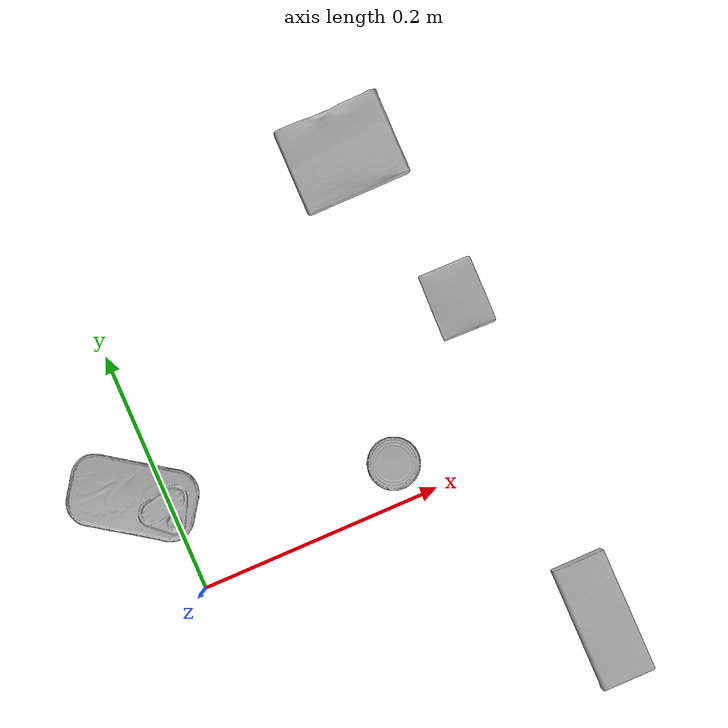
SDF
<sdf version="1.4">
  <world name="default">
    <light name="light1" type="point">
      <pose>0 0 1 0 0 0</pose>
      <diffuse>3 3 3 1</diffuse>
      <specular>3 3 3 1</specular>
    </light>
    <light name="light2" type="point">
      <pose>0 0.5 2 0 0 0</pose>
      <diffuse>1 1 1 1</diffuse>
      <specular>1 1 1 1</specular>
    </light>
    <light name="light3" type="point">
      <pose>0 0.5 2 0 0 0</pose>
      <diffuse>3 3 3 1</diffuse>
      <specular>3 3 3 1</specular>
    </light>
    <scene>
      <ambient>0.7 0.7 0.7</ambient>
    </scene>
    <model name="box1">
      <link name="link_box1">
        <collision name="default">
          <geometry>
            <mesh>
              <uri>model://pudding_box/collision_meshes/collision.obj</uri>
              <scale>0.5 0.5 0.5</scale>
            </mesh>
          </geometry>
          <surface>
            <friction>
              <ode>
                <mu>0.5</mu>
                <mu2>0.5</mu2>
              </ode>
            </friction>
          <contact>
        <ode>
            <max_vel>0</max_vel>
            <min_depth>0.0001</min_depth>
            <kp>1e8</kp>
        </ode>
    </contact></surface>
        </collision>
        <visual name="default">
          <geometry>
            <mesh>
              <uri>model://pudding_box/visual_meshes/visual.dae</uri>
              <scale>0.5 0.5 0.5</scale>
            </mesh>
          </geometry>
        </visual>
        <inertial>
          <mass>0.037190694361925125</mass>
          <pose>0.00024474109522998333 0.00040339428232982755 -0.0002594413817860186 0.005213101817299687 -0.0066037968510836995 0.02007982330137587</pose>
          <inertia>
            <ixx>1.0510541e-05</ixx>
            <iyy>7.071568e-06</iyy>
            <izz>1.552156e-05</izz>
            <ixy>0</ixy>
            <ixz>0</ixz>
            <iyz>0</iyz>
          </inertia>
        </inertial>
      </link>
      <pose>0.27432096004486084 0.1313045471906662 0.009862903505563736 0.022348513567265717 -0.0113917163356818 -0.019137994646427056</pose>
    </model>
    <model name="box2">
      <link name="link_box2">
        <collision name="default">
          <geometry>
            <mesh>
              <uri>model://gelatin_box/collision_meshes/collision.obj</uri>
              <scale>1.0 1.0 1.0</scale>
            </mesh>
          </geometry>
          <surface>
            <friction>
              <ode>
                <mu>0.5</mu>
                <mu2>0.5</mu2>
              </ode>
            </friction>
          <contact>
        <ode>
            <max_vel>0</max_vel>
            <min_depth>0.0001</min_depth>
            <kp>1e8</kp>
        </ode>
    </contact></surface>
        </collision>
        <visual name="default">
          <geometry>
            <mesh>
              <uri>model://gelatin_box/visual_meshes/visual.dae</uri>
              <scale>1.0 1.0 1.0</scale>
            </mesh>
          </geometry>
        </visual>
        <inertial>
          <mass>0.11744645982980728</mass>
          <pose>0.0004319618456065655 0.00011156871914863586 -0.0003640321083366871 -0.001050371865231848 -0.004755818223747806 0.01644056319675078</pose>
          <inertia>
            <ixx>8.290762e-05</ixx>
            <iyy>5.9220478e-05</iyy>
            <izz>0.00012620387</izz>
            <ixy>0</ixy>
            <ixz>0</ixz>
            <iyz>0</iyz>
          </inertia>
        </inertial>
      </link>
      <pose>0.23702116310596466 0.27385514974594116 0.015168311074376106 0.005597435684483446 -0.0073045247103087855 1.562668314015747</pose>
    </model>
    <model name="box3">
      <link name="link_box3">
        <collision name="default">
          <geometry>
            <mesh>
              <uri>model://wood_block/collision_meshes/collision.obj</uri>
              <scale>0.5 0.5 0.5</scale>
            </mesh>
          </geometry>
          <surface>
            <friction>
              <ode>
                <mu>0.5</mu>
                <mu2>0.5</mu2>
              </ode>
            </friction>
          <contact>
        <ode>
            <max_vel>0</max_vel>
            <min_depth>0.0001</min_depth>
            <kp>1e8</kp>
        </ode>
    </contact></surface>
        </collision>
        <visual name="default">
          <geometry>
            <mesh>
              <uri>model://wood_block/visual_meshes/visual.dae</uri>
              <scale>0.5 0.5 0.5</scale>
            </mesh>
          </geometry>
        </visual>
        <inertial>
          <mass>0.2439567744731903</mass>
          <pose>-2.906657982748584e-06 -0.00028540476341731846 0.00013204292918089777 -0.05220841280222248 -0.00519269633387802 -0.006861376952924709</pose>
          <inertia>
            <ixx>8.161277e-05</ixx>
            <iyy>0.00025781477</iyy>
            <izz>0.0002568504</izz>
            <ixy>0</ixy>
            <ixz>0</ixz>
            <iyz>0</iyz>
          </inertia>
        </inertial>
      </link>
      <pose>0.27840736508369446 -0.14748837053775787 0.02262926660478115 -0.005208443815052568 0.0057187570738483256 -1.567219595879549</pose>
    </model>
    <model name="can1">
      <link name="link_can1">
        <collision name="default">
          <geometry>
            <mesh>
              <uri>model://tuna_fish_can/collision_meshes/collision.obj</uri>
              <scale>0.5 0.5 0.5</scale>
            </mesh>
          </geometry>
          <surface>
            <friction>
              <ode>
                <mu>0.5</mu>
                <mu2>0.5</mu2>
              </ode>
            </friction>
          <contact>
        <ode>
            <max_vel>0</max_vel>
            <min_depth>0.0001</min_depth>
            <kp>1e8</kp>
        </ode>
    </contact></surface>
        </collision>
        <visual name="default">
          <geometry>
            <mesh>
              <uri>model://tuna_fish_can/visual_meshes/visual.dae</uri>
              <scale>0.5 0.5 0.5</scale>
            </mesh>
          </geometry>
        </visual>
        <inertial>
          <mass>0.02880808152258396</mass>
          <pose>-2.036173827946186e-05 -7.256211574713234e-06 -0.0005269025568850338 -0.0017944794030227106 0.00017162104037918286 0.24054189207372795</pose>
          <inertia>
            <ixx>3.894896e-06</ixx>
            <iyy>3.878662e-06</iyy>
            <izz>6.6647226e-06</izz>
            <ixy>0</ixy>
            <ixz>0</ixz>
            <iyz>0</iyz>
          </inertia>
        </inertial>
      </link>
      <pose>0.17614012956619263 0.03139610216021538 0.008520000614225864 1.4980729264785434e-08 4.679721438764668e-09 0.48633428324348266</pose>
    </model>
    <model name="can2">
      <link name="link_can2">
        <collision name="default">
          <geometry>
            <mesh>
              <uri>model://potted_meat_can/collision_meshes/collision.obj</uri>
              <scale>1.0 1.0 1.0</scale>
            </mesh>
          </geometry>
          <surface>
            <friction>
              <ode>
                <mu>0.5</mu>
                <mu2>0.5</mu2>
              </ode>
            </friction>
          <contact>
        <ode>
            <max_vel>0</max_vel>
            <min_depth>0.0001</min_depth>
            <kp>1e8</kp>
        </ode>
    </contact></surface>
        </collision>
        <visual name="default">
          <geometry>
            <mesh>
              <uri>model://potted_meat_can/visual_meshes/visual.dae</uri>
              <scale>1.0 1.0 1.0</scale>
            </mesh>
          </geometry>
        </visual>
        <inertial>
          <mass>0.21485549211502075</mass>
          <pose>0.00022888135572429746 -5.989110650261864e-05 -0.0006367442547343671 -0.028093358319385277 -0.007232601893117688 0.015406275523281094</pose>
          <inertia>
            <ixx>0.00027638907</ixx>
            <iyy>0.00016792737</iyy>
            <izz>0.00020102048</izz>
            <ixy>0</ixy>
            <ixz>0</ixz>
            <iyz>0</iyz>
          </inertia>
        </inertial>
      </link>
      <pose>-0.02105388417840004 0.0893125832080841 0.042128000408411026 -4.653535715558157e-08 -1.8201272734860548e-07 0.9607410150493557</pose>
    </model>
  <physics type="ode">
      <max_contacts>50</max_contacts>
      <ode>
        <solver>
          <type>quick</type>
          <iters>75</iters>
        </solver>
        <constraints>
          <contact_max_correcting_vel>0</contact_max_correcting_vel>
          <contact_surface_layer>0</contact_surface_layer>
        </constraints>
      </ode>
    </physics></world>
</sdf>
